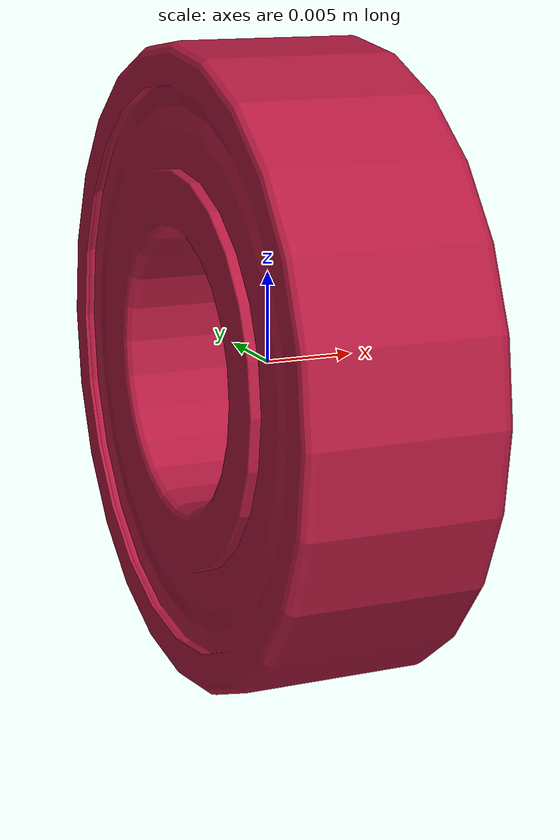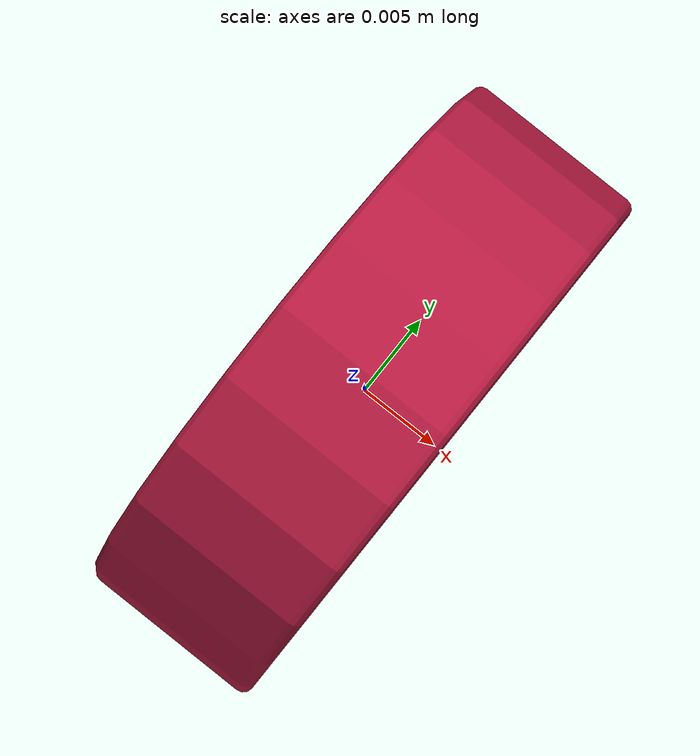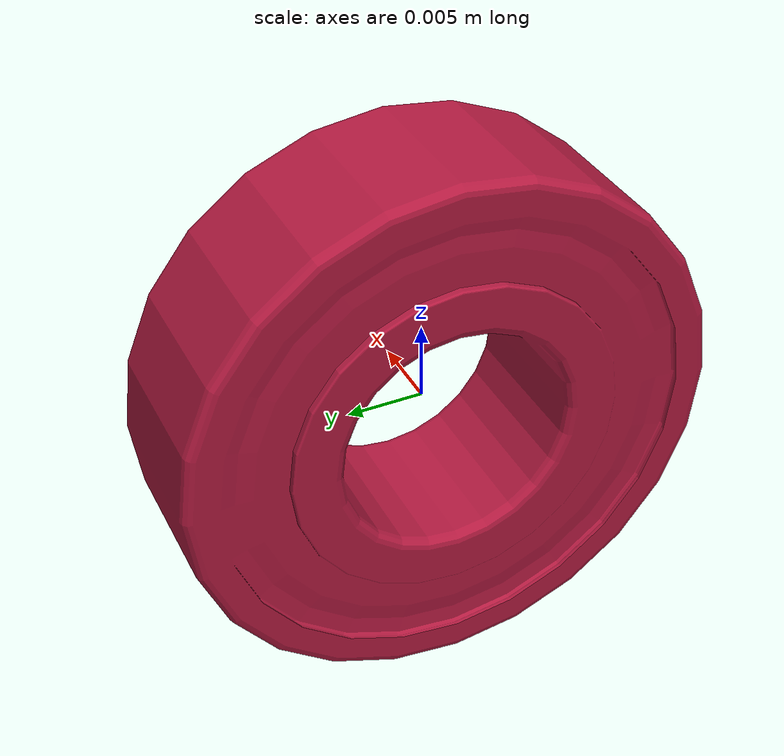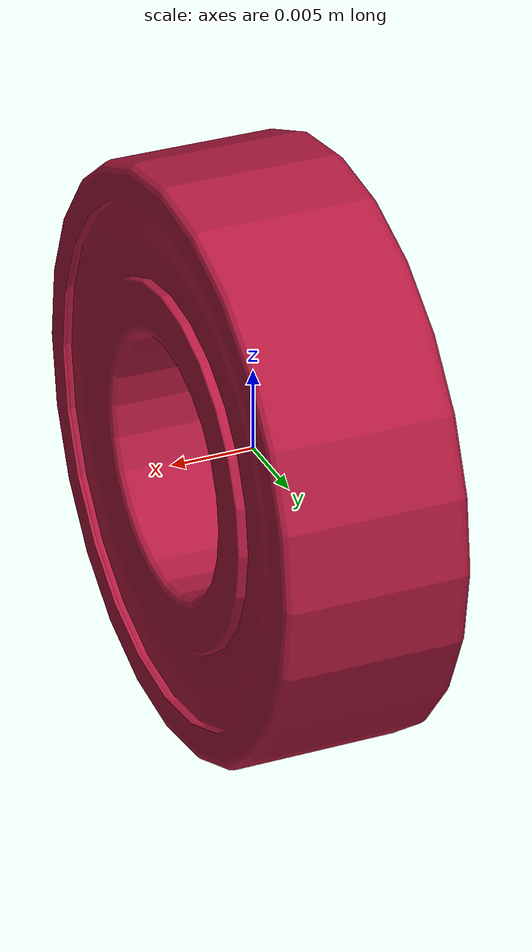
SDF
<?xml version="1.0" ?>
<sdf version="1.5">
  <model name="ball_bearing">
    <link name="link">
      <inertial>
        <pose>0 0 0 0 0 0</pose>
        <mass>0.048</mass>
        <inertia>
          <ixx>0.0000089</ixx>
          <ixy>0</ixy>
          <ixz>0</ixz>
          <iyy>0.0000049</iyy>
          <iyz>0</iyz>
          <izz>0.0000049</izz>
        </inertia>
      </inertial>
      <collision name="collision">
        <pose>-0.0055 0 0 0 0 0</pose>
        <geometry>
          <mesh>
            <uri>model://3d_ballbearing/6202-2Z.dae</uri>
          </mesh>
        </geometry>

        <surface>
          <friction>
            <ode>
              <mu>100000.0</mu>
              <mu2>100000.0</mu2>
            </ode>
          </friction>
          <contact>
            <ode>
              <kp>10000.0</kp>
              <kd>1000.0</kd>
              <min_depth>0.001</min_depth>
              <max_vel>0</max_vel>
            </ode>
          </contact>
        </surface>
      </collision>
      <visual name="visual">
        <pose>-0.0055 0 0 0 0 0</pose>
        <geometry>
          <mesh>
            <uri>model://3d_ballbearing/6202-2Z.dae</uri>
          </mesh>
        </geometry>
<material>
          <ambient>0.7 0.1 0.25 1</ambient>
          <diffuse>0.7 0.1 0.25 1</diffuse>
          <specular>0.01 0.01 0.01 1</specular>
          <emissive>0 0 0 1</emissive>
          <shader type='vertex'>
            <normal_map>__default__</normal_map>
          </shader>
        </material>
        <cast_shadows>1</cast_shadows>
        <transparency>0</transparency>
      </visual>
    </link>
<static>0</static>
    <allow_auto_disable>1</allow_auto_disable>
  </model>
</sdf>
